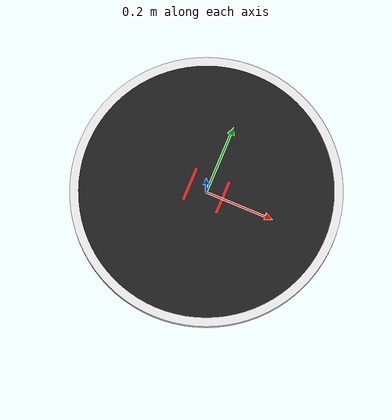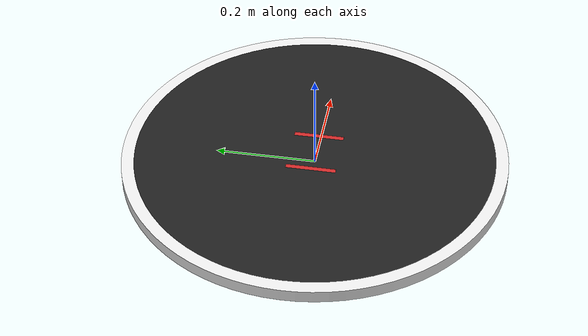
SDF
<sdf version='1.6'>
  <world name='default'>
    <!-- A global light source -->
    <include>
      <uri>model://sun</uri>
    </include>

    <!-- A ground plane -->

    <physics type="ode">
      <real_time_update_rate>4000.0</real_time_update_rate>
      <max_step_size>0.00025</max_step_size>
      <real_time_factor>1</real_time_factor>
      <ode>
        <solver>
          <type>quick</type>
          <iters>150</iters>
          <precon_iters>0</precon_iters>
          <sor>1.400000</sor>
          <use_dynamic_moi_rescaling>1</use_dynamic_moi_rescaling>
        </solver>
        <constraints>
          <cfm>0.00001</cfm>
          <erp>0.2</erp>
          <contact_max_correcting_vel>2000.000000</contact_max_correcting_vel>
          <contact_surface_layer>0.01000</contact_surface_layer>
        </constraints>
      </ode>
    </physics>

    <!-- Load world -->
    <include>
      <uri>model://dohyo_mini</uri>
    </include>

    <scene>
      <ambient>0.4 0.4 0.4 1</ambient>
      <background>0.7 0.7 0.7 1</background>
      <shadows>true</shadows>
    </scene>

  </world>
</sdf>

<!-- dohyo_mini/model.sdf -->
<sdf version='1.6'>
  <model name='dohyo_mini'>
    <pose>0 0 0.0125 0 0 0</pose>
    <static>true</static>

    <link name='base_link'>

      <collision name='base_link_collision'>
        <pose frame=''>0 0 0 0 0 0</pose>
        <geometry>
          <cylinder>
            <radius>0.385</radius>
            <length>0.025</length>
          </cylinder>
        </geometry>

        <surface>
          <friction>
            <ode>
              <mu>100</mu>
              <mu2>50</mu2>
            </ode>
          </friction>
        </surface>

      </collision>

      <visual name='base_link_visual_base'>
        <pose frame=''>0 0 0 0 0 0</pose>
        <geometry>
          <mesh>
            <scale>1 1 1</scale>
            <uri>model://dohyo_mini/meshes/base.stl</uri>
          </mesh>
        </geometry>
        <material>
          <script>
            <uri>file://media/materials/scripts/gazebo.material</uri>
            <name>Gazebo/FlatBlack</name>
          </script>
        </material>
      </visual>

      <visual name='base_link_visual_borda'>
        <pose frame=''>0 0 0 0 0 0</pose>
        <geometry>
          <mesh>
            <scale>1 1 1</scale>
            <uri>model://dohyo_mini/meshes/borda.stl</uri>
          </mesh>
        </geometry>
        <material>
          <script>
            <uri>file://media/materials/scripts/gazebo.material</uri>
            <name>Gazebo/White</name>
          </script>
        </material>
      </visual>

      <visual name='base_link_visual_shikiri'>
        <pose frame=''>0 0 1e-5 0 0 0</pose>
        <geometry>
          <mesh>
            <scale>1 1 1</scale>
            <uri>model://dohyo_mini/meshes/shikiri.stl</uri>
          </mesh>
        </geometry>
        <material>
          <script>
            <uri>file://media/materials/scripts/gazebo.material</uri>
            <name>Gazebo/Red</name>
          </script>
        </material>
      </visual>

    </link>
    <static>1</static>
  </model>
</sdf>
